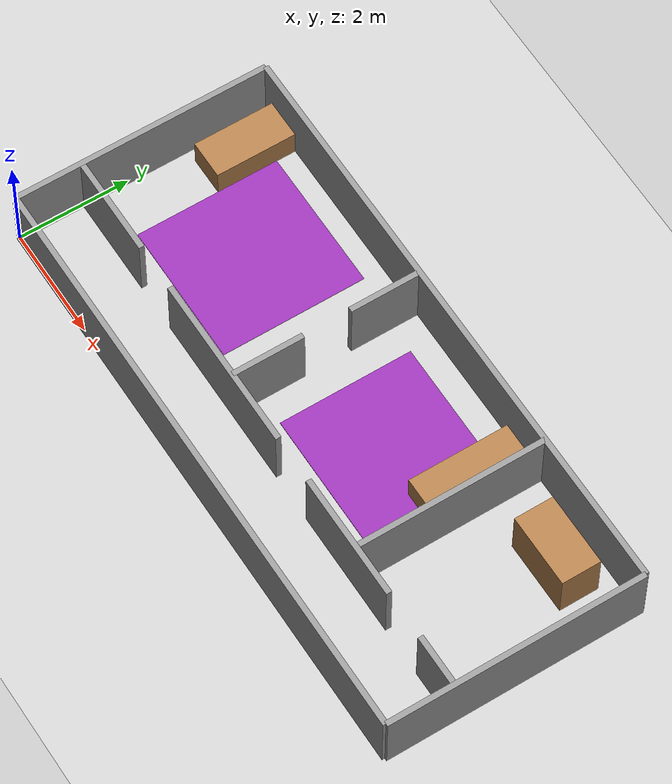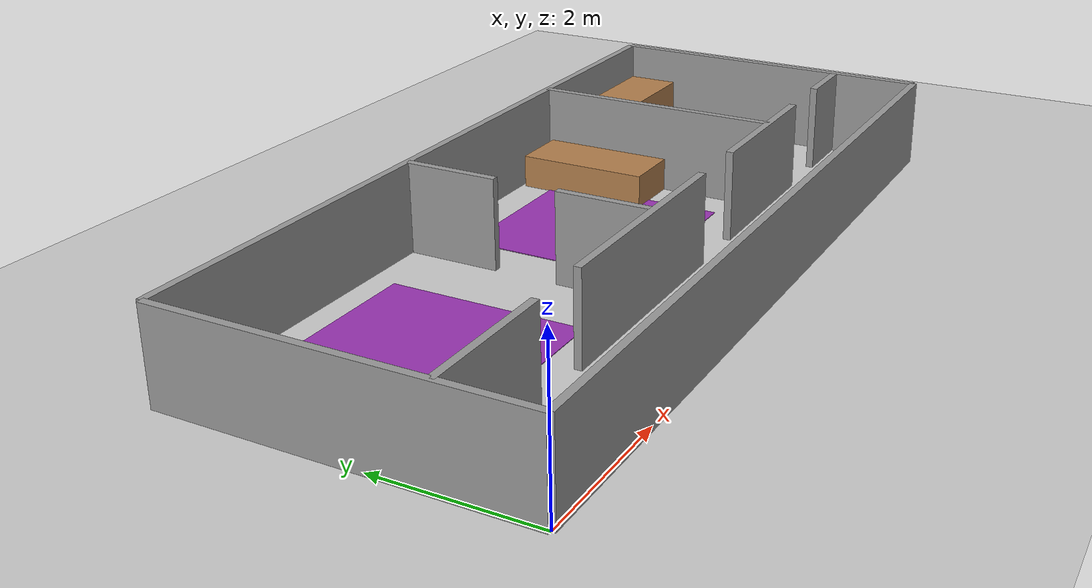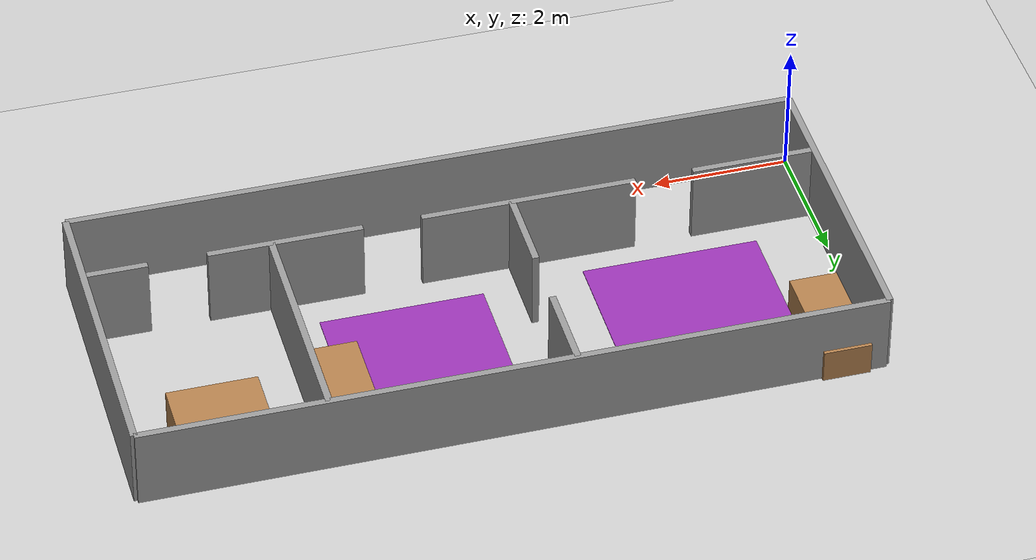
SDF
<?xml version="1.0"?>
<sdf version="1.6">
  <world name="apartment">
    <!-- Open looking straight down at the whole apartment. Centre is
         (10.7/2, 4.6/2); 12 m up clears the 10.7 m long axis at the default
         FOV. pitch 1.5708 is straight down. -->
    <gui fullscreen="0">
      <camera name="top_down">
        <pose>5.35 2.30 12.0 0 1.5708 0</pose>
      </camera>
    </gui>

    <include><uri>model://sun</uri></include>
    <include><uri>model://ground_plane</uri></include>

    <physics name="default" type="ode">
      <max_step_size>0.004</max_step_size>
      <real_time_factor>1.0</real_time_factor>
      <real_time_update_rate>250</real_time_update_rate>
    </physics>

    <model name="wall_00">
      <static>true</static>
      <pose>5.350 0.000 0.600 0 0 0</pose>
      <link name="link">
        <collision name="collision">
          <geometry><box><size>10.700 0.100 1.200</size></box></geometry>
        </collision>
        <visual name="visual">
          <geometry><box><size>10.700 0.100 1.200</size></box></geometry>
          <material><script><uri>file://media/materials/scripts/gazebo.material</uri>
            <name>Gazebo/Grey</name></script></material>
        </visual>
      </link>
    </model>
    <model name="wall_01">
      <static>true</static>
      <pose>5.350 4.600 0.600 0 0 0</pose>
      <link name="link">
        <collision name="collision">
          <geometry><box><size>10.700 0.100 1.200</size></box></geometry>
        </collision>
        <visual name="visual">
          <geometry><box><size>10.700 0.100 1.200</size></box></geometry>
          <material><script><uri>file://media/materials/scripts/gazebo.material</uri>
            <name>Gazebo/Grey</name></script></material>
        </visual>
      </link>
    </model>
    <model name="wall_02">
      <static>true</static>
      <pose>0.000 2.300 0.600 0 0 0</pose>
      <link name="link">
        <collision name="collision">
          <geometry><box><size>0.100 4.600 1.200</size></box></geometry>
        </collision>
        <visual name="visual">
          <geometry><box><size>0.100 4.600 1.200</size></box></geometry>
          <material><script><uri>file://media/materials/scripts/gazebo.material</uri>
            <name>Gazebo/Grey</name></script></material>
        </visual>
      </link>
    </model>
    <model name="wall_03">
      <static>true</static>
      <pose>10.700 2.300 0.600 0 0 0</pose>
      <link name="link">
        <collision name="collision">
          <geometry><box><size>0.100 4.600 1.200</size></box></geometry>
        </collision>
        <visual name="visual">
          <geometry><box><size>0.100 4.600 1.200</size></box></geometry>
          <material><script><uri>file://media/materials/scripts/gazebo.material</uri>
            <name>Gazebo/Grey</name></script></material>
        </visual>
      </link>
    </model>
    <model name="wall_04">
      <static>true</static>
      <pose>0.912 1.200 0.600 0 0 0</pose>
      <link name="link">
        <collision name="collision">
          <geometry><box><size>1.825 0.100 1.200</size></box></geometry>
        </collision>
        <visual name="visual">
          <geometry><box><size>1.825 0.100 1.200</size></box></geometry>
          <material><script><uri>file://media/materials/scripts/gazebo.material</uri>
            <name>Gazebo/Grey</name></script></material>
        </visual>
      </link>
    </model>
    <model name="wall_05">
      <static>true</static>
      <pose>4.250 1.200 0.600 0 0 0</pose>
      <link name="link">
        <collision name="collision">
          <geometry><box><size>3.150 0.100 1.200</size></box></geometry>
        </collision>
        <visual name="visual">
          <geometry><box><size>3.150 0.100 1.200</size></box></geometry>
          <material><script><uri>file://media/materials/scripts/gazebo.material</uri>
            <name>Gazebo/Grey</name></script></material>
        </visual>
      </link>
    </model>
    <model name="wall_06">
      <static>true</static>
      <pose>7.800 1.200 0.600 0 0 0</pose>
      <link name="link">
        <collision name="collision">
          <geometry><box><size>2.250 0.100 1.200</size></box></geometry>
        </collision>
        <visual name="visual">
          <geometry><box><size>2.250 0.100 1.200</size></box></geometry>
          <material><script><uri>file://media/materials/scripts/gazebo.material</uri>
            <name>Gazebo/Grey</name></script></material>
        </visual>
      </link>
    </model>
    <model name="wall_07">
      <static>true</static>
      <pose>10.238 1.200 0.600 0 0 0</pose>
      <link name="link">
        <collision name="collision">
          <geometry><box><size>0.925 0.100 1.200</size></box></geometry>
        </collision>
        <visual name="visual">
          <geometry><box><size>0.925 0.100 1.200</size></box></geometry>
          <material><script><uri>file://media/materials/scripts/gazebo.material</uri>
            <name>Gazebo/Grey</name></script></material>
        </visual>
      </link>
    </model>
    <model name="wall_08">
      <static>true</static>
      <pose>4.500 1.837 0.600 0 0 0</pose>
      <link name="link">
        <collision name="collision">
          <geometry><box><size>0.100 1.275 1.200</size></box></geometry>
        </collision>
        <visual name="visual">
          <geometry><box><size>0.100 1.275 1.200</size></box></geometry>
          <material><script><uri>file://media/materials/scripts/gazebo.material</uri>
            <name>Gazebo/Grey</name></script></material>
        </visual>
      </link>
    </model>
    <model name="wall_09">
      <static>true</static>
      <pose>4.500 3.962 0.600 0 0 0</pose>
      <link name="link">
        <collision name="collision">
          <geometry><box><size>0.100 1.275 1.200</size></box></geometry>
        </collision>
        <visual name="visual">
          <geometry><box><size>0.100 1.275 1.200</size></box></geometry>
          <material><script><uri>file://media/materials/scripts/gazebo.material</uri>
            <name>Gazebo/Grey</name></script></material>
        </visual>
      </link>
    </model>
    <model name="wall_10">
      <static>true</static>
      <pose>8.000 2.900 0.600 0 0 0</pose>
      <link name="link">
        <collision name="collision">
          <geometry><box><size>0.100 3.400 1.200</size></box></geometry>
        </collision>
        <visual name="visual">
          <geometry><box><size>0.100 3.400 1.200</size></box></geometry>
          <material><script><uri>file://media/materials/scripts/gazebo.material</uri>
            <name>Gazebo/Grey</name></script></material>
        </visual>
      </link>
    </model>
    <model name="carpet_living">
      <static>true</static>
      <pose>2.250 2.900 0.005 0 0 0</pose>
      <link name="link">
        <collision name="collision">
          <geometry><box><size>2.600 2.600 0.010</size></box></geometry>
        </collision>
        <visual name="visual">
          <geometry><box><size>2.600 2.600 0.010</size></box></geometry>
          <material><script><uri>file://media/materials/scripts/gazebo.material</uri>
            <name>Gazebo/Purple</name></script></material>
        </visual>
      </link>
    </model>
    <model name="carpet_bedroom">
      <static>true</static>
      <pose>6.250 2.900 0.005 0 0 0</pose>
      <link name="link">
        <collision name="collision">
          <geometry><box><size>2.400 2.400 0.010</size></box></geometry>
        </collision>
        <visual name="visual">
          <geometry><box><size>2.400 2.400 0.010</size></box></geometry>
          <material><script><uri>file://media/materials/scripts/gazebo.material</uri>
            <name>Gazebo/Purple</name></script></material>
        </visual>
      </link>
    </model>
    <model name="sofa">
      <static>true</static>
      <pose>0.600 3.900 0.250 0 0 0</pose>
      <link name="link">
        <collision name="collision">
          <geometry><box><size>0.700 1.600 0.500</size></box></geometry>
        </collision>
        <visual name="visual">
          <geometry><box><size>0.700 1.600 0.500</size></box></geometry>
          <material><script><uri>file://media/materials/scripts/gazebo.material</uri>
            <name>Gazebo/Wood</name></script></material>
        </visual>
      </link>
    </model>
    <model name="bed">
      <static>true</static>
      <pose>7.550 3.600 0.225 0 0 0</pose>
      <link name="link">
        <collision name="collision">
          <geometry><box><size>0.800 1.800 0.450</size></box></geometry>
        </collision>
        <visual name="visual">
          <geometry><box><size>0.800 1.800 0.450</size></box></geometry>
          <material><script><uri>file://media/materials/scripts/gazebo.material</uri>
            <name>Gazebo/Wood</name></script></material>
        </visual>
      </link>
    </model>
    <model name="island">
      <static>true</static>
      <pose>9.400 3.900 0.450 0 0 0</pose>
      <link name="link">
        <collision name="collision">
          <geometry><box><size>1.300 0.700 0.900</size></box></geometry>
        </collision>
        <visual name="visual">
          <geometry><box><size>1.300 0.700 0.900</size></box></geometry>
          <material><script><uri>file://media/materials/scripts/gazebo.material</uri>
            <name>Gazebo/Wood</name></script></material>
        </visual>
      </link>
    </model>
  </world>
</sdf>
